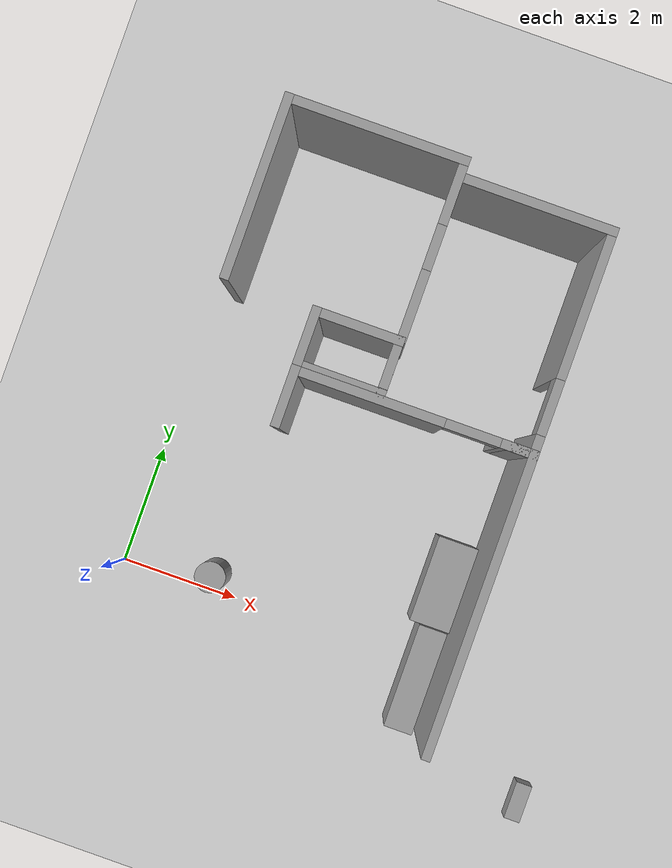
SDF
<sdf version="1.6">
 <world name="default">
  <model name="ground_plane">
   <static>1</static>
   <link name="link">
    <collision name="collision">
     <geometry><plane><normal>0 0 1</normal><size>100 100</size></plane></geometry>
     <surface><friction><ode><mu>100</mu><mu2>50</mu2></ode></friction></surface>
    </collision>
    <visual name="visual">
     <cast_shadows>0</cast_shadows>
     <geometry><plane><normal>0 0 1</normal><size>100 100</size></plane></geometry>
     <material>
      <script><uri>file://media/materials/scripts/gazebo.material</uri><name>Gazebo/Grey</name></script>
     </material>
    </visual>
   </link>
  </model>
  <model name="cma_L5">
   <pose>3.77502 1.45512 0 0 -0 0</pose>
   <link name="Wall_0">
    <collision name="Wall_0_Collision">
     <geometry><box><size>1 0.15 2.5</size></box></geometry>
     <pose>0 0 1.25 0 -0 0</pose>
    </collision>
    <visual name="Wall_0_Visual">
     <pose>0 0 1.25 0 -0 0</pose>
     <geometry><box><size>1 0.15 2.5</size></box></geometry>
     <material>
      <script><uri>file://media/materials/scripts/gazebo.material</uri><name>Gazebo/Grey</name></script>
      <ambient>1 1 1 1</ambient>
     </material>
    </visual>
    <pose>-1.925 2 0 0 -0 1.5708</pose>
   </link>
   <link name="Wall_1">
    <pose>0 2.425 0 0 -0 0</pose>
    <visual name="Wall_1_Visual_0">
     <pose>-0.7525 0 1.25 0 -0 0</pose>
     <geometry><box><size>2.495 0.15 2.5</size></box></geometry>
     <material>
      <script><uri>file://media/materials/scripts/gazebo.material</uri><name>Gazebo/Grey</name></script>
      <ambient>1 1 1 1</ambient>
     </material>
    </visual>
    <collision name="Wall_1_Collision_0">
     <geometry><box><size>2.495 0.15 2.5</size></box></geometry>
     <pose>-0.7525 0 1.25 0 -0 0</pose>
    </collision>
    <visual name="Wall_1_Visual_1">
     <pose>1.6975 0 1.25 0 -0 0</pose>
     <geometry><box><size>0.605 0.15 2.5</size></box></geometry>
     <material>
      <script><uri>file://media/materials/scripts/gazebo.material</uri><name>Gazebo/Grey</name></script>
      <ambient>1 1 1 1</ambient>
     </material>
    </visual>
    <collision name="Wall_1_Collision_1">
     <geometry><box><size>0.605 0.15 2.5</size></box></geometry>
     <pose>1.6975 0 1.25 0 -0 0</pose>
    </collision>
    <visual name="Wall_1_Visual_2">
     <pose>0.945 0 2.25 0 -0 0</pose>
     <geometry><box><size>0.9 0.15 0.5</size></box></geometry>
     <material>
      <script><uri>file://media/materials/scripts/gazebo.material</uri><name>Gazebo/Grey</name></script>
      <ambient>1 1 1 1</ambient>
     </material>
    </visual>
    <collision name="Wall_1_Collision_2">
     <geometry><box><size>0.9 0.15 0.5</size></box></geometry>
     <pose>0.945 0 2.25 0 -0 0</pose>
    </collision>
   </link>
   <link name="Wall_3">
    <collision name="Wall_3_Collision">
     <geometry><box><size>5 0.15 2.5</size></box></geometry>
     <pose>0 0 1.25 0 -0 0</pose>
    </collision>
    <visual name="Wall_3_Visual">
     <pose>0 0 1.25 0 -0 0</pose>
     <geometry><box><size>5 0.15 2.5</size></box></geometry>
     <material>
      <script><uri>file://media/materials/scripts/gazebo.material</uri><name>Gazebo/Grey</name></script>
      <ambient>1 1 1 1</ambient>
     </material>
    </visual>
    <pose>1.925 0 0 0 0 -1.5708</pose>
   </link>
   <static>1</static>
  </model>
  <model name="cma_dispensa">
   <pose>2.52584 4.40119 0 0 -0 0</pose>
   <link name="Wall_5">
    <collision name="Wall_5_Collision">
     <geometry><box><size>1 0.15 2.5</size></box></geometry>
     <pose>0 0 1.25 0 -0 0</pose>
    </collision>
    <visual name="Wall_5_Visual">
     <pose>0 0 1.25 0 -0 0</pose>
     <geometry><box><size>1 0.15 2.5</size></box></geometry>
     <material>
      <script><uri>file://media/materials/scripts/gazebo.material</uri><name>Gazebo/Grey</name></script>
      <ambient>1 1 1 1</ambient>
     </material>
    </visual>
    <pose>-0.675 0 0 0 -0 1.5708</pose>
   </link>
   <link name="Wall_6">
    <collision name="Wall_6_Collision">
     <geometry><box><size>1.5 0.15 2.5</size></box></geometry>
     <pose>0 0 1.25 0 -0 0</pose>
    </collision>
    <visual name="Wall_6_Visual">
     <pose>0 0 1.25 0 -0 0</pose>
     <geometry><box><size>1.5 0.15 2.5</size></box></geometry>
     <material>
      <script><uri>file://media/materials/scripts/gazebo.material</uri><name>Gazebo/Grey</name></script>
      <ambient>1 1 1 1</ambient>
     </material>
    </visual>
    <pose>0 0.425 0 0 -0 0</pose>
   </link>
   <link name="Wall_7">
    <pose>0.675 0 0 0 0 -1.5708</pose>
    <visual name="Wall_7_Visual_0">
     <pose>-0.4275 0 1.25 0 -0 0</pose>
     <geometry><box><size>0.145 0.15 2.5</size></box></geometry>
     <material>
      <script><uri>file://media/materials/scripts/gazebo.material</uri><name>Gazebo/Grey</name></script>
      <ambient>1 1 1 1</ambient>
     </material>
    </visual>
    <collision name="Wall_7_Collision_0">
     <geometry><box><size>0.145 0.15 2.5</size></box></geometry>
     <pose>-0.4275 0 1.25 0 -0 0</pose>
    </collision>
    <visual name="Wall_7_Visual_1">
     <pose>0.4225 0 1.25 0 -0 0</pose>
     <geometry><box><size>0.155 0.15 2.5</size></box></geometry>
     <material>
      <script><uri>file://media/materials/scripts/gazebo.material</uri><name>Gazebo/Grey</name></script>
      <ambient>1 1 1 1</ambient>
     </material>
    </visual>
    <collision name="Wall_7_Collision_1">
     <geometry><box><size>0.155 0.15 2.5</size></box></geometry>
     <pose>0.4225 0 1.25 0 -0 0</pose>
    </collision>
    <visual name="Wall_7_Visual_2">
     <pose>-0.005 0 2.25 0 -0 0</pose>
     <geometry><box><size>0.7 0.15 0.5</size></box></geometry>
     <material>
      <script><uri>file://media/materials/scripts/gazebo.material</uri><name>Gazebo/Grey</name></script>
      <ambient>1 1 1 1</ambient>
     </material>
    </visual>
    <collision name="Wall_7_Collision_2">
     <geometry><box><size>0.7 0.15 0.5</size></box></geometry>
     <pose>-0.005 0 2.25 0 -0 0</pose>
    </collision>
   </link>
   <link name="Wall_8">
    <collision name="Wall_8_Collision">
     <geometry><box><size>1.5 0.15 2.5</size></box></geometry>
     <pose>0 0 1.25 0 -0 0</pose>
    </collision>
    <visual name="Wall_8_Visual">
     <pose>0 0 1.25 0 -0 0</pose>
     <geometry><box><size>1.5 0.15 2.5</size></box></geometry>
     <material>
      <script><uri>file://media/materials/scripts/gazebo.material</uri><name>Gazebo/Grey</name></script>
      <ambient>1 1 1 1</ambient>
     </material>
    </visual>
    <pose>0 -0.425 0 0 -0 3.14159</pose>
   </link>
   <static>1</static>
  </model>
  <model name="cma_qe">
   <pose>1.79561 6.31228 0 0 -0 0</pose>
   <link name="Wall_15">
    <collision name="Wall_15_Collision">
     <geometry><box><size>3 0.15 2.5</size></box></geometry>
     <pose>0 0 1.25 0 -0 0</pose>
    </collision>
    <visual name="Wall_15_Visual">
     <pose>0 0 1.25 0 -0 0</pose>
     <geometry><box><size>3 0.15 2.5</size></box></geometry>
     <material>
      <script><uri>file://media/materials/scripts/gazebo.material</uri><name>Gazebo/Grey</name></script>
      <ambient>1 1 1 1</ambient>
     </material>
    </visual>
    <pose>-1.425 0 0 0 -0 1.5708</pose>
   </link>
   <link name="Wall_16">
    <collision name="Wall_16_Collision">
     <geometry><box><size>3 0.15 2.5</size></box></geometry>
     <pose>0 0 1.25 0 -0 0</pose>
    </collision>
    <visual name="Wall_16_Visual">
     <pose>0 0 1.25 0 -0 0</pose>
     <geometry><box><size>3 0.15 2.5</size></box></geometry>
     <material>
      <script><uri>file://media/materials/scripts/gazebo.material</uri><name>Gazebo/Grey</name></script>
      <ambient>1 1 1 1</ambient>
     </material>
    </visual>
    <pose>0 1.425 0 0 -0 0</pose>
   </link>
   <link name="Wall_17">
    <pose>1.425 0 0 0 0 -1.5708</pose>
    <visual name="Wall_17_Visual_0">
     <pose>-0.945 0 1.25 0 -0 0</pose>
     <geometry><box><size>1.11 0.15 2.5</size></box></geometry>
     <material>
      <script><uri>file://media/materials/scripts/gazebo.material</uri><name>Gazebo/Grey</name></script>
      <ambient>1 1 1 1</ambient>
     </material>
    </visual>
    <collision name="Wall_17_Collision_0">
     <geometry><box><size>1.11 0.15 2.5</size></box></geometry>
     <pose>-0.945 0 1.25 0 -0 0</pose>
    </collision>
    <visual name="Wall_17_Visual_1">
     <pose>0.92 0 1.25 0 -0 0</pose>
     <geometry><box><size>1.16 0.15 2.5</size></box></geometry>
     <material>
      <script><uri>file://media/materials/scripts/gazebo.material</uri><name>Gazebo/Grey</name></script>
      <ambient>1 1 1 1</ambient>
     </material>
    </visual>
    <collision name="Wall_17_Collision_1">
     <geometry><box><size>1.16 0.15 2.5</size></box></geometry>
     <pose>0.92 0 1.25 0 -0 0</pose>
    </collision>
    <visual name="Wall_17_Visual_2">
     <pose>-0.025 0 2.25 0 -0 0</pose>
     <geometry><box><size>0.73 0.15 0.5</size></box></geometry>
     <material>
      <script><uri>file://media/materials/scripts/gazebo.material</uri><name>Gazebo/Grey</name></script>
      <ambient>1 1 1 1</ambient>
     </material>
    </visual>
    <collision name="Wall_17_Collision_2">
     <geometry><box><size>0.73 0.15 0.5</size></box></geometry>
     <pose>-0.025 0 2.25 0 -0 0</pose>
    </collision>
   </link>
   <static>1</static>
  </model>
  <model name="cma_area2">
   <pose>4.52275 5.67862 0 0 -0 0</pose>
   <link name="Wall_23">
    <collision name="Wall_23_Collision">
     <geometry><box><size>2.5 0.15 2.5</size></box></geometry>
     <pose>0 0 1.25 0 -0 0</pose>
    </collision>
    <visual name="Wall_23_Visual">
     <pose>0 0 1.25 0 -0 0</pose>
     <geometry><box><size>2.5 0.15 2.5</size></box></geometry>
     <material>
      <script><uri>file://media/materials/scripts/gazebo.material</uri><name>Gazebo/Grey</name></script>
      <ambient>1 1 1 1</ambient>
     </material>
    </visual>
    <pose>0 1.8 0 0 -0 0</pose>
   </link>
   <link name="Wall_24">
    <pose>1.175 0 0 0 0 -1.5708</pose>
    <visual name="Wall_24_Visual_0">
     <pose>-0.6425 0 1.25 0 -0 0</pose>
     <geometry><box><size>2.465 0.15 2.5</size></box></geometry>
     <material>
      <script><uri>file://media/materials/scripts/gazebo.material</uri><name>Gazebo/Grey</name></script>
      <ambient>1 1 1 1</ambient>
     </material>
    </visual>
    <collision name="Wall_24_Collision_0">
     <geometry><box><size>2.465 0.15 2.5</size></box></geometry>
     <pose>-0.6425 0 1.25 0 -0 0</pose>
    </collision>
    <visual name="Wall_24_Visual_1">
     <pose>1.6825 0 1.25 0 -0 0</pose>
     <geometry><box><size>0.385 0.15 2.5</size></box></geometry>
     <material>
      <script><uri>file://media/materials/scripts/gazebo.material</uri><name>Gazebo/Grey</name></script>
      <ambient>1 1 1 1</ambient>
     </material>
    </visual>
    <collision name="Wall_24_Collision_1">
     <geometry><box><size>0.385 0.15 2.5</size></box></geometry>
     <pose>1.6825 0 1.25 0 -0 0</pose>
    </collision>
    <visual name="Wall_24_Visual_2">
     <pose>1.04 0 2.25 0 -0 0</pose>
     <geometry><box><size>0.9 0.15 0.5</size></box></geometry>
     <material>
      <script><uri>file://media/materials/scripts/gazebo.material</uri><name>Gazebo/Grey</name></script>
      <ambient>1 1 1 1</ambient>
     </material>
    </visual>
    <collision name="Wall_24_Collision_2">
     <geometry><box><size>0.9 0.15 0.5</size></box></geometry>
     <pose>1.04 0 2.25 0 -0 0</pose>
    </collision>
   </link>
   <link name="Wall_25">
    <collision name="Wall_25_Collision">
     <geometry><box><size>0.5 0.15 2.5</size></box></geometry>
     <pose>0 0 1.25 0 -0 0</pose>
    </collision>
    <visual name="Wall_25_Visual">
     <pose>0 0 1.25 0 -0 0</pose>
     <geometry><box><size>0.5 0.15 2.5</size></box></geometry>
     <material>
      <script><uri>file://media/materials/scripts/gazebo.material</uri><name>Gazebo/Grey</name></script>
      <ambient>1 1 1 1</ambient>
     </material>
    </visual>
    <pose>1 -1.8 0 0 -0 3.14159</pose>
   </link>
   <static>1</static>
  </model>
  <model name="cma_cesto">
   <link name="link_1">
    <pose>-0.329659 -1.55494 0 0 -0 0</pose>
    <inertial>
     <mass>0.267897</mass>
     <inertia>
      <ixx>0.0268102</ixx>
      <ixy>0</ixy>
      <ixz>0</ixz>
      <iyy>0.0268102</iyy>
      <iyz>0</iyz>
      <izz>0.00897111</izz>
     </inertia>
    </inertial>
    <visual name="visual">
     <geometry><cylinder><radius>0.258792</radius><length>1</length></cylinder></geometry>
     <material>
      <lighting>1</lighting>
      <script><uri>file://media/materials/scripts/gazebo.material</uri><name>Gazebo/Grey</name></script>
      <ambient>0.3 0.3 0.3 1</ambient>
      <diffuse>0.7 0.7 0.7 1</diffuse>
      <specular>0.01 0.01 0.01 1</specular>
      <emissive>0 0 0 1</emissive>
     </material>
    </visual>
    <collision name="collision">
     <geometry><cylinder><radius>0.258792</radius><length>1</length></cylinder></geometry>
     <surface>
      <friction>
       <ode><mu>1</mu><mu2>1</mu2><fdir1>0 0 0</fdir1><slip1>0</slip1><slip2>0</slip2></ode>
       <torsional>
        <coefficient>1</coefficient>
        <patch_radius>0</patch_radius>
        <surface_radius>0</surface_radius>
        <use_patch_radius>1</use_patch_radius>
        <ode><slip>0</slip></ode>
       </torsional>
      </friction>
      <bounce><restitution_coefficient>0</restitution_coefficient><threshold>1e+06</threshold></bounce>
      <contact>
       <collide_without_contact>0</collide_without_contact>
       <collide_without_contact_bitmask>1</collide_without_contact_bitmask>
       <collide_bitmask>1</collide_bitmask>
       <ode>
        <soft_cfm>0</soft_cfm>
        <soft_erp>0.2</soft_erp>
        <kp>1e+13</kp>
        <kd>1</kd>
        <max_vel>0.01</max_vel>
        <min_depth>0</min_depth>
       </ode>
       <bullet>
        <split_impulse>1</split_impulse>
        <split_impulse_penetration_threshold>-0.01</split_impulse_penetration_threshold>
        <soft_cfm>0</soft_cfm>
        <soft_erp>0.2</soft_erp>
        <kp>1e+13</kp>
        <kd>1</kd>
       </bullet>
      </contact>
     </surface>
    </collision>
   </link>
   <static>0</static>
   <pose>1.91098 1.85863 0.499992 0 0 -0.013205</pose>
  </model>
  <model name="cma_barra_70cmV">
   <link name="link_2">
    <pose>0.076239 -1e-06 0 0 0 -1.5756</pose>
    <inertial>
     <mass>0.0631368</mass>
     <inertia>
      <ixx>0.00106542</ixx>
      <ixy>0</ixy>
      <ixz>0</ixz>
      <iyy>0.00284727</iyy>
      <iyz>0</iyz>
      <izz>0.0025815</izz>
     </inertia>
    </inertial>
    <visual name="visual">
     <geometry><box><size>0.643938 0.275728 0.355737</size></box></geometry>
     <material>
      <lighting>1</lighting>
      <script><uri>file://media/materials/scripts/gazebo.material</uri><name>Gazebo/Grey</name></script>
      <ambient>0.3 0.3 0.3 1</ambient>
      <diffuse>0.7 0.7 0.7 1</diffuse>
      <specular>0.01 0.01 0.01 1</specular>
      <emissive>0 0 0 1</emissive>
     </material>
    </visual>
    <collision name="collision">
     <geometry><box><size>0.643938 0.275728 0.355737</size></box></geometry>
     <surface>
      <friction>
       <ode><mu>1</mu><mu2>1</mu2><fdir1>0 0 0</fdir1><slip1>0</slip1><slip2>0</slip2></ode>
       <torsional>
        <coefficient>1</coefficient>
        <patch_radius>0</patch_radius>
        <surface_radius>0</surface_radius>
        <use_patch_radius>1</use_patch_radius>
        <ode><slip>0</slip></ode>
       </torsional>
      </friction>
      <bounce><restitution_coefficient>0</restitution_coefficient><threshold>1e+06</threshold></bounce>
      <contact>
       <collide_without_contact>0</collide_without_contact>
       <collide_without_contact_bitmask>1</collide_without_contact_bitmask>
       <collide_bitmask>1</collide_bitmask>
       <ode>
        <soft_cfm>0</soft_cfm>
        <soft_erp>0.2</soft_erp>
        <kp>1e+13</kp>
        <kd>1</kd>
        <max_vel>0.01</max_vel>
        <min_depth>0</min_depth>
       </ode>
       <bullet>
        <split_impulse>1</split_impulse>
        <split_impulse_penetration_threshold>-0.01</split_impulse_penetration_threshold>
        <soft_cfm>0</soft_cfm>
        <soft_erp>0.2</soft_erp>
        <kp>1e+13</kp>
        <kd>1</kd>
       </bullet>
      </contact>
     </surface>
    </collision>
   </link>
   <static>0</static>
   <pose>7.61063 -1.60586 0.177868 0 0 -0.000837</pose>
  </model>
  <model name="cma_geladeira">
   <link name="link_2">
    <pose>3e-06 -4e-06 0 0 -0 0</pose>
    <inertial>
     <mass>0.994085</mass>
     <inertia>
      <ixx>0.258405</ixx>
      <ixy>0</ixy>
      <ixz>0</ixz>
      <iyy>0.121468</iyy>
      <iyz>0</iyz>
      <izz>0.214192</izz>
     </inertia>
    </inertial>
    <visual name="visual">
     <geometry><box><size>0.682844 1.45579 1</size></box></geometry>
     <material>
      <lighting>1</lighting>
      <script><uri>file://media/materials/scripts/gazebo.material</uri><name>Gazebo/Grey</name></script>
      <ambient>0.3 0.3 0.3 1</ambient>
      <diffuse>0.7 0.7 0.7 1</diffuse>
      <specular>0.01 0.01 0.01 1</specular>
      <emissive>0 0 0 1</emissive>
     </material>
    </visual>
    <collision name="collision">
     <geometry><box><size>0.682844 1.45579 1</size></box></geometry>
     <surface>
      <friction>
       <ode><mu>1</mu><mu2>1</mu2><fdir1>0 0 0</fdir1><slip1>0</slip1><slip2>0</slip2></ode>
       <torsional>
        <coefficient>1</coefficient>
        <patch_radius>0</patch_radius>
        <surface_radius>0</surface_radius>
        <use_patch_radius>1</use_patch_radius>
        <ode><slip>0</slip></ode>
       </torsional>
      </friction>
      <bounce><restitution_coefficient>0</restitution_coefficient><threshold>1e+06</threshold></bounce>
      <contact>
       <collide_without_contact>0</collide_without_contact>
       <collide_without_contact_bitmask>1</collide_without_contact_bitmask>
       <collide_bitmask>1</collide_bitmask>
       <ode>
        <soft_cfm>0</soft_cfm>
        <soft_erp>0.2</soft_erp>
        <kp>1e+13</kp>
        <kd>1</kd>
        <max_vel>0.01</max_vel>
        <min_depth>0</min_depth>
       </ode>
       <bullet>
        <split_impulse>1</split_impulse>
        <split_impulse_penetration_threshold>-0.01</split_impulse_penetration_threshold>
        <soft_cfm>0</soft_cfm>
        <soft_erp>0.2</soft_erp>
        <kp>1e+13</kp>
        <kd>1</kd>
       </bullet>
      </contact>
     </surface>
    </collision>
   </link>
   <static>0</static>
   <pose>5.21958 1.47717 0.5 0 -0 0</pose>
  </model>
  <model name="cma_armario_coz_190x40cm">
   <link name="link_3">
    <pose>-3e-06 1e-06 0 0 -0 0</pose>
    <inertial>
     <mass>0.848618</mass>
     <inertia>
      <ixx>0.28876</ixx>
      <ixy>0</ixy>
      <ixz>0</ixz>
      <iyy>0.0872359</iyy>
      <iyz>0</iyz>
      <izz>0.234559</izz>
     </inertia>
    </inertial>
    <visual name="visual">
     <geometry><box><size>0.483301 1.75592 1</size></box></geometry>
     <material>
      <lighting>1</lighting>
      <script><uri>file://media/materials/scripts/gazebo.material</uri><name>Gazebo/Grey</name></script>
      <ambient>0.3 0.3 0.3 1</ambient>
      <diffuse>0.7 0.7 0.7 1</diffuse>
      <specular>0.01 0.01 0.01 1</specular>
      <emissive>0 0 0 1</emissive>
     </material>
    </visual>
    <collision name="collision">
     <geometry><box><size>0.483301 1.75592 1</size></box></geometry>
     <surface>
      <friction>
       <ode><mu>1</mu><mu2>1</mu2><fdir1>0 0 0</fdir1><slip1>0</slip1><slip2>0</slip2></ode>
       <torsional>
        <coefficient>1</coefficient>
        <patch_radius>0</patch_radius>
        <surface_radius>0</surface_radius>
        <use_patch_radius>1</use_patch_radius>
        <ode><slip>0</slip></ode>
       </torsional>
      </friction>
      <bounce><restitution_coefficient>0</restitution_coefficient><threshold>1e+06</threshold></bounce>
      <contact>
       <collide_without_contact>0</collide_without_contact>
       <collide_without_contact_bitmask>1</collide_without_contact_bitmask>
       <collide_bitmask>1</collide_bitmask>
       <ode>
        <soft_cfm>0</soft_cfm>
        <soft_erp>0.2</soft_erp>
        <kp>1e+13</kp>
        <kd>1</kd>
        <max_vel>0.01</max_vel>
        <min_depth>0</min_depth>
       </ode>
       <bullet>
        <split_impulse>1</split_impulse>
        <split_impulse_penetration_threshold>-0.01</split_impulse_penetration_threshold>
        <soft_cfm>0</soft_cfm>
        <soft_erp>0.2</soft_erp>
        <kp>1e+13</kp>
        <kd>1</kd>
       </bullet>
      </contact>
     </surface>
    </collision>
   </link>
   <static>0</static>
   <pose>5.29765 -0.147685 0.5 0 -0 0</pose>
  </model>
 </world>
</sdf>
